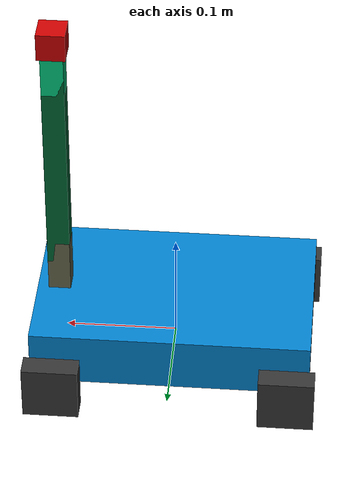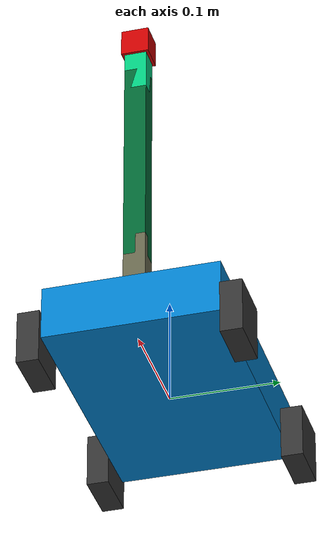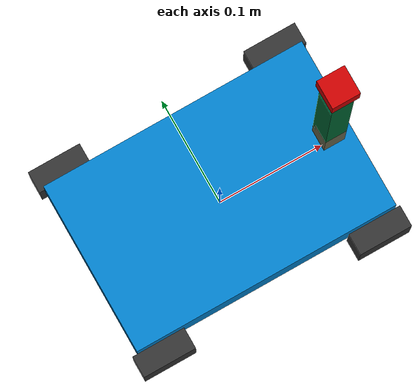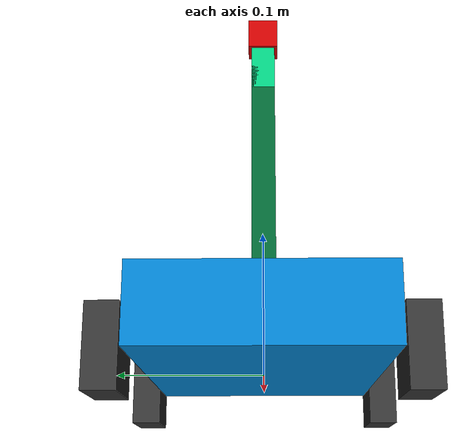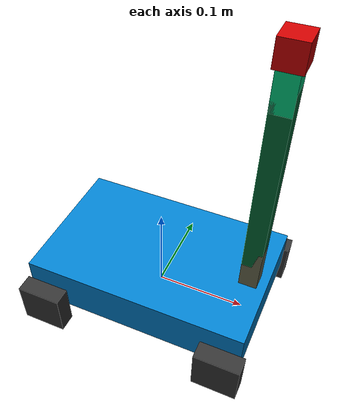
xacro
<?xml version = "1.0"?>
<robot name="car_model" xmlns:xacro="http://www.ros.org/wiki/xacro">

  <xacro:property name="PI" value="3.1415926"/>
  <xacro:property name="car_mass" value="1.0" />
  <xacro:property name="car_a" value="0.25" />
  <xacro:property name="car_b" value="0.16" />
  <xacro:property name="car_c" value="0.05" />
  <xacro:property name="wheel_mass" value="0.1" />
  <xacro:property name="wheel_lenth" value="0.02" />
  <xacro:property name="wheel_radius" value="0.025" />
  <xacro:property name="column_width" value="0.02" />
  <xacro:property name="column_height1" value="0.05" />
  <xacro:property name="column_height2" value="0.2" />
  <xacro:property name="column_height3" value="0.05" />
  <xacro:property name="column_mass" value="0.1" />
  <xacro:property name="camera_width" value="0.025" />

  <link name="world_link">
  </link>

  <link name="car_body">

    <collision>
      <origin
        xyz="0 0 ${car_c/2}"
        rpy="0 0 0" />
      <geometry>
        <box size="${car_a} ${car_b} ${car_c}" />
      </geometry>
    </collision>

    <visual>
      <origin
        xyz="0 0 ${car_c/2}"
        rpy="0 0 0" />
      <geometry>
        <box size="${car_a} ${car_b} ${car_c}" />
      </geometry>
      <material name="blue">
        <color rgba="0 0.5 0.8 1"/>
      </material>
    </visual>

    <inertial>
      <origin
        xyz="0 0 ${car_c/2}"
        rpy="0 0 0" />
      <mass value="${car_mass}" />
      <inertia
        ixx="${car_mass / 12.0 * (car_b*car_b + car_c*car_c)}"
        ixy="0.0"
        ixz="0.0"
        iyy="${car_mass / 12.0 * (car_a*car_a + car_c*car_c)}"
        iyz="0.0"
        izz="${car_mass / 12.0 * (car_a*car_a + car_b*car_b)}" />
    </inertial>

  </link>

  <joint name="joint_world" type="fixed">
    <parent link="world_link" />
    <child link="car_body" />
  </joint>

  <link name="right_front_wheel">

    <collision>
      <origin
        xyz="0 0 0"
        rpy="0 0 0" />
      <geometry>
        <cylinder length="${wheel_lenth}" radius="${wheel_radius}" />
      </geometry>
      <surface>
        <friction>
          <ode>
            <mu>0</mu>
            <mu2>0</mu2>
            <slip1>1.0</slip1>
            <slip2>1.0</slip2>
          </ode>
        </friction>
      </surface>
    </collision>

    <inertial>
      <origin
        xyz="0 0 0"
        rpy="0 0 0" />
      <mass value="${wheel_mass}" />
      <inertia
        ixx="${wheel_mass / 12.0 * (wheel_lenth*wheel_lenth + wheel_lenth*wheel_lenth)}"
        ixy="0.0"
        ixz="0.0"
        iyy="${wheel_mass / 12.0 * (wheel_radius*wheel_radius + wheel_lenth*wheel_lenth)}"
        iyz="0.0"
        izz="${wheel_mass / 12.0 * (wheel_radius*wheel_radius + wheel_lenth*wheel_lenth)}" />
    </inertial>

    <visual>
      <geometry>
        <box size="${wheel_radius*2} ${wheel_radius*2} ${wheel_lenth}" />
      </geometry>
      <material name="grey">
        <color rgba="0.2 0.2 0.2 1.0"/>
      </material>
    </visual>

  </link>

  <joint name="joint_right_front_wheel" type="continuous">
    <axis xyz="0 0 1" rpy="0 0 0" />
    <parent link="car_body" />
    <child link="right_front_wheel" />
    <origin rpy="0 ${PI/2} ${PI/2}" xyz="${car_a/2-0.02} ${-car_b/2-0.01} 0" />
    <limit effort="100" velocity="100" />
    <joint_properties damping="0" friction="0" />
  </joint>

  <link name="right_back_wheel">

    <collision>
      <origin
        xyz="0 0 0"
        rpy="0 0 0" />
      <geometry>
        <cylinder length="${wheel_lenth}" radius="${wheel_radius}" />
      </geometry>
      <surface>
        <friction>
          <ode>
            <mu>0</mu>
            <mu2>0</mu2>
            <slip1>1.0</slip1>
            <slip2>1.0</slip2>
          </ode>
        </friction>
      </surface>
    </collision>

    <inertial>
      <origin
        xyz="0 0 0"
        rpy="0 0 0" />
      <mass value="${wheel_mass}" />
      <inertia
        ixx="${wheel_mass / 12.0 * (wheel_lenth*wheel_lenth + wheel_lenth*wheel_lenth)}"
        ixy="0.0"
        ixz="0.0"
        iyy="${wheel_mass / 12.0 * (wheel_radius*wheel_radius + wheel_lenth*wheel_lenth)}"
        iyz="0.0"
        izz="${wheel_mass / 12.0 * (wheel_radius*wheel_radius + wheel_lenth*wheel_lenth)}" />
    </inertial>

    <visual>
      <geometry>
        <box size="${wheel_radius*2} ${wheel_radius*2} ${wheel_lenth}" />
      </geometry>
      <material name="grey">
        <color rgba="0.2 0.2 0.2 1.0"/>
      </material>
    </visual>

  </link>

  <!-- Camera -->
  <joint name="joint_right_back_wheel" type="continuous">
    <axis xyz="0 0 1" rpy="0 0 0" />
    <parent link="car_body" />
    <child link="right_back_wheel" />
    <origin rpy="0 ${PI/2} ${PI/2}" xyz="${-car_a/2+0.02} ${-car_b/2-0.01} 0" />
    <limit effort="100" velocity="100" />
    <joint_properties damping="0" friction="0" />
  </joint>

  <link name="left_front_wheel">

    <collision>
      <origin
        xyz="0 0 0"
        rpy="0 0 0" />
      <geometry>
        <cylinder length="${wheel_lenth}" radius="${wheel_radius}" />
      </geometry>
      <surface>
        <friction>
          <ode>
            <mu>0</mu>
            <mu2>0</mu2>
            <slip1>1.0</slip1>
            <slip2>1.0</slip2>
          </ode>
        </friction>
      </surface>
    </collision>

    <inertial>
      <origin
        xyz="0 0 0"
        rpy="0 0 0" />
      <mass value="${wheel_mass}" />
      <inertia
        ixx="${wheel_mass / 12.0 * (wheel_lenth*wheel_lenth + wheel_lenth*wheel_lenth)}"
        ixy="0.0"
        ixz="0.0"
        iyy="${wheel_mass / 12.0 * (wheel_radius*wheel_radius + wheel_lenth*wheel_lenth)}"
        iyz="0.0"
        izz="${wheel_mass / 12.0 * (wheel_radius*wheel_radius + wheel_lenth*wheel_lenth)}" />
    </inertial>

    <visual>
      <geometry>
        <box size="${wheel_radius*2} ${wheel_radius*2} ${wheel_lenth}" />
      </geometry>
      <material name="grey">
        <color rgba="0.2 0.2 0.2 1.0"/>
      </material>
    </visual>

  </link>

  <joint name="joint_left_front_wheel" type="continuous">
    <axis xyz="0 0 1" rpy="0 0 0" />
    <parent link="car_body" />
    <child link="left_front_wheel" />
    <origin rpy="0 ${PI/2} ${PI/2}" xyz="${car_a/2-0.02} ${car_b/2+0.01} 0" />
    <limit effort="100" velocity="100" />
    <joint_properties damping="0" friction="0" />
  </joint>

  <link name="left_back_wheel">

    <collision>
      <origin
        xyz="0 0 0"
        rpy="0 0 0" />
      <geometry>
        <cylinder length="${wheel_lenth}" radius="${wheel_radius}" />
      </geometry>
      <surface>
        <friction>
          <ode>
            <mu>0</mu>
            <mu2>0</mu2>
            <slip1>1.0</slip1>
            <slip2>1.0</slip2>
          </ode>
        </friction>
      </surface>
    </collision>

    <inertial>
      <origin
        xyz="0 0 0"
        rpy="0 0 0" />
      <mass value="${wheel_mass}" />
      <inertia
        ixx="${wheel_mass / 12.0 * (wheel_lenth*wheel_lenth + wheel_lenth*wheel_lenth)}"
        ixy="0.0"
        ixz="0.0"
        iyy="${wheel_mass / 12.0 * (wheel_radius*wheel_radius + wheel_lenth*wheel_lenth)}"
        iyz="0.0"
        izz="${wheel_mass / 12.0 * (wheel_radius*wheel_radius + wheel_lenth*wheel_lenth)}" />
    </inertial>

    <visual>
      <geometry>
        <box size="${wheel_radius*2} ${wheel_radius*2} ${wheel_lenth}" />
      </geometry>
      <material name="grey">
        <color rgba="0.2 0.2 0.2 1.0"/>
      </material>
    </visual>

  </link>

  <joint name="joint_left_back_wheel" type="continuous">
    <axis xyz="0 0 1" rpy="0 0 0" />
    <parent link="car_body" />
    <child link="left_back_wheel" />
    <origin rpy="0 ${PI/2} ${PI/2}" xyz="${-car_a/2+0.02} ${car_b/2+0.01} 0" />
    <limit effort="100" velocity="100" />
    <joint_properties damping="0" friction="0" />
  </joint>

  <link name="column_link1">

    <collision>
      <origin
        xyz="0 0 ${column_height1/2}"
        rpy="0 0 0"/>
      <geometry>
	<box size="${column_width} ${column_width} ${column_height1}"/>
      </geometry>
    </collision>

    <visual>
      <origin
        xyz="0 0 ${column_height1/2}"
        rpy="0 0 0"/>
      <geometry>
	<box size="${column_width} ${column_width} ${column_height1}"/>
      </geometry>
      <material name="brown">
        <color rgba="0.4 0.4 0.3 1"/>
      </material>
    </visual>

    <inertial>
      <origin
        xyz="0 0 ${column_height1/2}"
        rpy="0 0 0"/>
      <mass value="${column_mass}"/>
      <inertia
	  ixx="${column_mass / 12.0 * (column_width*column_width + column_height1*column_height1)}"
          ixy="0.0"
          ixz="0.0"
	  iyy="${column_mass / 12.0 * (column_height1*column_height1 + column_width*column_width)}"
          iyz="0.0"
	  izz="${column_mass / 12.0 * (column_width*column_width + column_width*column_width)}"/>
    </inertial>

  </link>

  <joint name="joint_column_link1" type="continuous">
    <axis xyz="0 0 1" rpy="0 0 0" />
    <parent link="car_body" />
    <child link="column_link1" />
    <origin xyz="${car_a/2-column_width} 0 ${car_c}" />
    <limit effort="100" velocity="100" />
    <joint_properties damping="0" friction="0" />
  </joint>

  <link name="column_link2">

    <collision>
      <origin
        xyz="0 0 ${column_height2/2}"
        rpy="0 0 0"/>
      <geometry>
	<box size="${column_width} ${column_width} ${column_height2}"/>
      </geometry>
    </collision>

    <visual>
      <origin
        xyz="0 0 ${column_height2/2}"
        rpy="0 0 0"/>
      <geometry>
	<box size="${column_width} ${column_width} ${column_height2}"/>
      </geometry>
      <material name="deepgreen">
        <color rgba="0 0.4 0.2 1"/>
      </material>
    </visual>

    <inertial>
      <origin
        xyz="0 0 ${column_height2/2}"
        rpy="0 0 0"/>
      <mass value="${column_mass}"/>
      <inertia
	  ixx="${column_mass / 12.0 * (column_width*column_width + column_height2*column_height2)}"
          ixy="0.0"
          ixz="0.0"
	  iyy="${column_mass / 12.0 * (column_height2*column_height2 + column_width*column_width)}"
          iyz="0.0"
	  izz="${column_mass / 12.0 * (column_width*column_width + column_width*column_width)}"/>
    </inertial>

  </link>

  <joint name="joint_column_link2" type="continuous">
    <axis xyz="0 1 0" rpy="0 0 0" />
    <parent link="column_link1" />
    <child link="column_link2" />
    <origin xyz="0 0 ${column_height1 - column_width}" />
    <limit effort="100" velocity="100" />
    <joint_properties damping="0" friction="0" />
  </joint>

  <link name="column_link3">

    <collision>
      <origin
        xyz="0 0 ${column_height3/2}"
        rpy="0 0 0"/>
      <geometry>
	<box size="${column_width} ${column_width} ${column_height3}"/>
      </geometry>
    </collision>

    <visual>
      <origin
        xyz="0 0 ${column_height3/2}"
        rpy="0 0 0"/>
      <geometry>
	<box size="${column_width} ${column_width} ${column_height3}"/>
      </geometry>
      <material name="green">
        <color rgba="0 0.8 0.5 1"/>
      </material>
    </visual>

    <inertial>
      <origin
        xyz="0 0 ${column_height3/2}"
        rpy="0 0 0"/>
      <mass value="${column_mass}"/>
      <inertia
	  ixx="${column_mass / 12.0 * (column_width*column_width + column_height3*column_height3)}"
          ixy="0.0"
          ixz="0.0"
	  iyy="${column_mass / 12.0 * (column_height3*column_height3 + column_width*column_width)}"
          iyz="0.0"
	  izz="${column_mass / 12.0 * (column_width*column_width + column_width*column_width)}"/>
    </inertial>

  </link>

  <joint name="joint_column_link3" type="continuous">
    <axis xyz="0 0 1" rpy="0 0 0" />
    <parent link="column_link2" />
    <child link="column_link3" />
    <origin xyz="0 0 ${column_height2 - column_width}" />
    <limit effort="100" velocity="100" />
    <joint_properties damping="0" friction="0" />
  </joint>

  <link name="camera_link">

    <collision>
      <origin xyz="0 0 0" rpy="0 0 0" />
      <geometry>
	<box size="${camera_width} ${camera_width} ${camera_width}"/>
      </geometry>
    </collision>

    <visual>
      <origin xyz="0 0 0" rpy="0 0 0" />
      <geometry>
	<box size="${camera_width} ${camera_width} ${camera_width}"/>
      </geometry>
      <material name="red">
        <color rgba="0.8 0 0 1"/>
      </material>
    </visual>

    <inertial>
      <mass value="1e-5" />
      <origin xyz="0 0 0" rpy="0 0 0"/>
      <inertia ixx="1e-6" ixy="0" ixz="0" iyy="1e-6" iyz="0" izz="1e-6" />
    </inertial>

  </link>

  <joint name="joint_camera_link" type="fixed">
    <origin xyz="0 0 ${column_height3}" rpy="0 ${-PI/2} 0"/>
    <parent link="column_link3"/>
    <child link="camera_link"/>
  </joint>

  <gazebo reference="world_link">
    <material>Gazebo/Yellow</material>
  </gazebo>
  <gazebo reference="car_body">
    <material>Gazebo/Orange</material>
  </gazebo>
  <gazebo reference="right_front_wheel">
    <mu1>0.2</mu1>
    <mu2>0.2</mu2>
    <material>Gazebo/Gray</material>
  </gazebo>
  <gazebo reference="right_back_wheel">
    <mu1>0.2</mu1>
    <mu2>0.2</mu2>
    <material>Gazebo/Gray</material>
  </gazebo>
  <gazebo reference="left_front_wheel">
    <mu1>0.2</mu1>
    <mu2>0.2</mu2>
    <material>Gazebo/Gray</material>
  </gazebo>
  <gazebo reference="left_back_wheel">
    <mu1>0.2</mu1>
    <mu2>0.2</mu2>
    <material>Gazebo/Gray</material>
  </gazebo>
  <gazebo reference="column_link1">
    <mu1>0.2</mu1>
    <mu2>0.2</mu2>
    <material>Gazebo/Green</material>
  </gazebo>
  <gazebo reference="column_link2">
    <mu1>0.2</mu1>
    <mu2>0.2</mu2>
    <material>Gazebo/Blue</material>
  </gazebo>
  <gazebo reference="column_link3">
    <mu1>0.2</mu1>
    <mu2>0.2</mu2>
    <material>Gazebo/Green</material>
  </gazebo>
  <gazebo reference="camera_link">
    <mu1>0.2</mu1>
    <mu2>0.2</mu2>
    <material>Gazebo/Red</material>
  </gazebo>

  <transmission name="tran_column_link1">
    <type>transmission_interface/SimpleTransmission</type>
    <joint name="joint_column_link1">
      <hardwareInterface>hardware_interface/EffortJointInterface</hardwareInterface>
    </joint>
    <actuator name="motor_column_link1">
      <hardwareInterface>hardware_interface/EffortJointInterface</hardwareInterface>
      <mechanicalReduction>1</mechanicalReduction>
      <motorTorqueConstant>1</motorTorqueConstant>
    </actuator>
  </transmission>

  <transmission name="tran_column_link2">
    <type>transmission_interface/SimpleTransmission</type>
    <joint name="joint_column_link2">
      <hardwareInterface>hardware_interface/EffortJointInterface</hardwareInterface>
    </joint>
    <actuator name="motor_column_link2">
      <hardwareInterface>hardware_interface/EffortJointInterface</hardwareInterface>
      <mechanicalReduction>1</mechanicalReduction>
      <motorTorqueConstant>1</motorTorqueConstant>
    </actuator>
  </transmission>

  <transmission name="tran_column_link3">
    <type>transmission_interface/SimpleTransmission</type>
    <joint name="joint_column_link3">
      <hardwareInterface>hardware_interface/EffortJointInterface</hardwareInterface>
    </joint>
    <actuator name="motor_column_link3">
      <hardwareInterface>hardware_interface/EffortJointInterface</hardwareInterface>
      <mechanicalReduction>1</mechanicalReduction>
      <motorTorqueConstant>1</motorTorqueConstant>
    </actuator>
  </transmission>

  <transmission name="tran_right_front_wheel">
    <type>transmission_interface/SimpleTransmission</type>
    <joint name="joint_right_front_wheel">
      <hardwareInterface>hardware_interface/EffortJointInterface</hardwareInterface>
    </joint>
    <actuator name="motor_right_front_wheel">
      <hardwareInterface>hardware_interface/EffortJointInterface</hardwareInterface>
      <mechanicalReduction>1</mechanicalReduction>
    </actuator>
  </transmission>

  <transmission name="tran_right_back_wheel">
    <type>transmission_interface/SimpleTransmission</type>
    <joint name="joint_right_back_wheel">
      <hardwareInterface>hardware_interface/EffortJointInterface</hardwareInterface>
    </joint>
    <actuator name="motor_right_back_wheel">
      <hardwareInterface>hardware_interface/EffortJointInterface</hardwareInterface>
      <mechanicalReduction>1</mechanicalReduction>
    </actuator>
  </transmission>

  <transmission name="tran_left_front_wheel">
    <type>transmission_interface/SimpleTransmission</type>
    <joint name="joint_left_front_wheel">
      <hardwareInterface>hardware_interface/EffortJointInterface</hardwareInterface>
    </joint>
    <actuator name="motor_left_front_wheel">
      <hardwareInterface>hardware_interface/EffortJointInterface</hardwareInterface>
      <mechanicalReduction>1</mechanicalReduction>
    </actuator>
  </transmission>

  <transmission name="tran_left_back_wheel">
    <type>transmission_interface/SimpleTransmission</type>
    <joint name="joint_left_back_wheel">
      <hardwareInterface>hardware_interface/EffortJointInterface</hardwareInterface>
    </joint>
    <actuator name="motor_left_back_wheel">
      <hardwareInterface>hardware_interface/EffortJointInterface</hardwareInterface>
      <mechanicalReduction>1</mechanicalReduction>
    </actuator>
  </transmission>

  <gazebo reference="camera_link">
    <sensor type="camera" name="camera1">
      <update_rate>30.0</update_rate>
      <camera name="head">
        <horizontal_fov>1.3962634</horizontal_fov>
        <image>
          <width>800</width>
          <height>800</height>
          <format>R8G8B8</format>
        </image>
        <clip>
          <near>0.02</near>
          <far>300</far>
        </clip>
        <noise>
          <type>gaussian</type>
          <mean>0.0</mean>
          <stddev>0.007</stddev>
        </noise>
      </camera>
      <plugin name="camera_controller"
        filename="libgazebo_ros_camera.so">
        <alwaysOn>true</alwaysOn>
        <updateRate>0.0</updateRate>
        <cameraName>rrbot/camera1</cameraName>
        <imageTopicName>image_raw</imageTopicName>
        <cameraInfoTopicName>camera_info</cameraInfoTopicName>
        <frameName>camera_link_optical</frameName>
        <hackBaseline>0.0</hackBaseline>
        <distortionK1>0.0</distortionK1>
        <distortionK2>0.0</distortionK2>
        <distortionK3>0.0</distortionK3>
        <distortionT1>0.0</distortionT1>
        <distortionT2>0.0</distortionT2>
        <CxPrime>0</CxPrime>
        <Cx>0.0</Cx>
        <Cy>0.0</Cy>
        <focalLength>0.0</focalLength>
      </plugin>
    </sensor>
  </gazebo>

  <gazebo>
    <plugin name="skid_steer_drive_controller"
      filename="libgazebo_ros_skid_steer_drive.so">
      <alwaysOn>true</alwaysOn>
      <updateRate>100.0</updateRate>
      <robotNamespace>/</robotNamespace>
      <rightFrontJoint>joint_right_front_wheel</rightFrontJoint>
      <rightRearJoint>joint_right_back_wheel</rightRearJoint>
      <leftFrontJoint>joint_left_front_wheel</leftFrontJoint>
      <leftRearJoint>joint_left_back_wheel</leftRearJoint>
      <wheelSeparation>${car_b}</wheelSeparation>
      <wheelDiameter>${wheel_radius*2}</wheelDiameter>
      <commandTopic>cmd_vel</commandTopic>
      <odometryTopic>odom</odometryTopic>
      <robotBaseFrame>world_link</robotBaseFrame>
      <odometryFrame>odom</odometryFrame>
      <covariance_x>0.000100</covariance_x>
      <covariance_y>0.000100</covariance_y>
      <covariance_yaw>0.010000</covariance_yaw>
      <torque>1</torque>
      <topicName>cmd_vel</topicName>
      <broadcastTF>1</broadcastTF>
    </plugin>
  </gazebo>

  <gazebo>
    <plugin name="gazebo_ros_control"
      filename="libgazebo_ros_control.so">
      <robotNamespace>/car_model</robotNamespace>
      <robotSimType>gazebo_ros_control/DefaultRobotHWSim</robotSimType>
    </plugin>
  </gazebo>

</robot>
